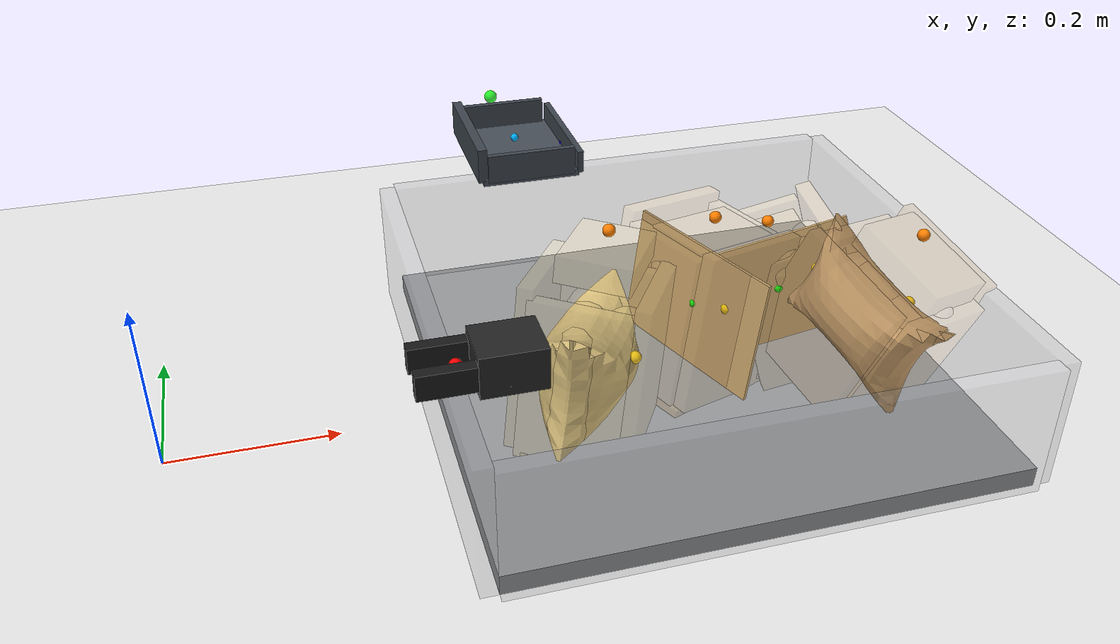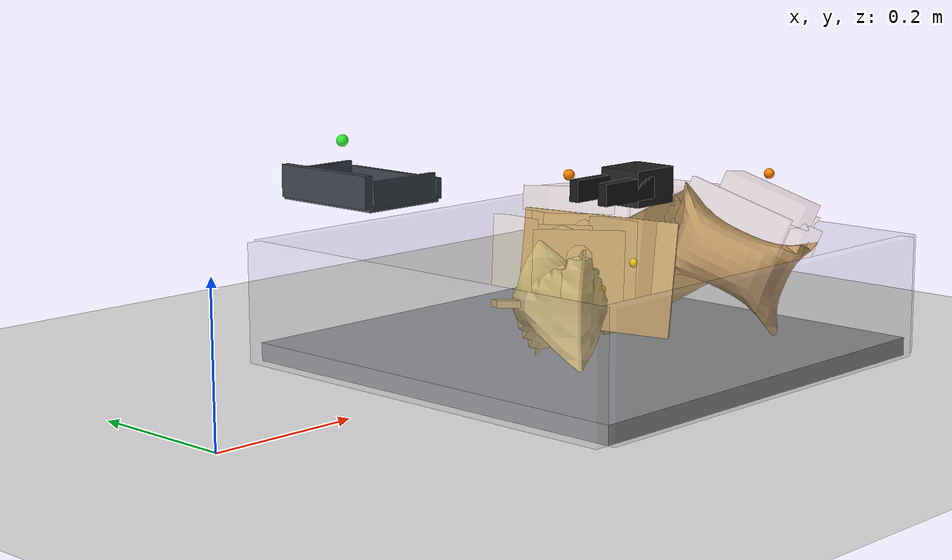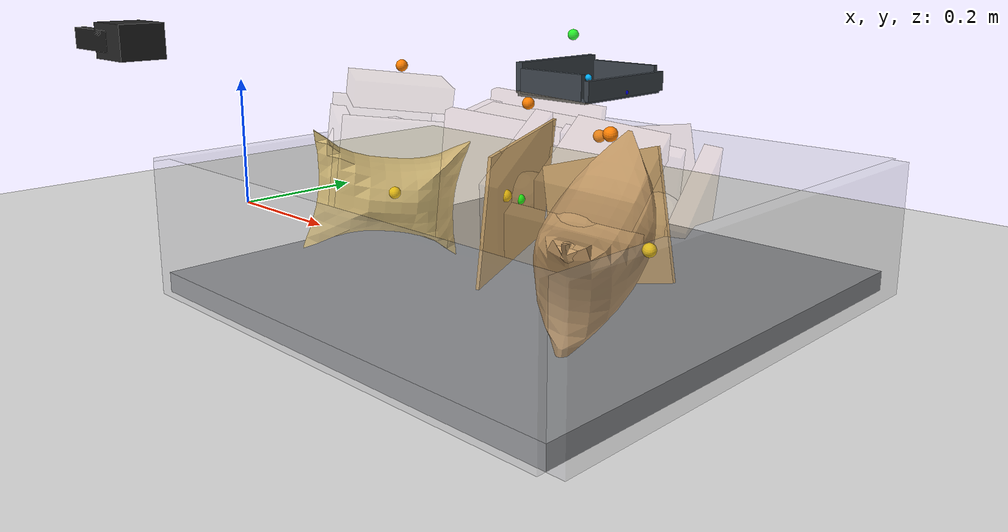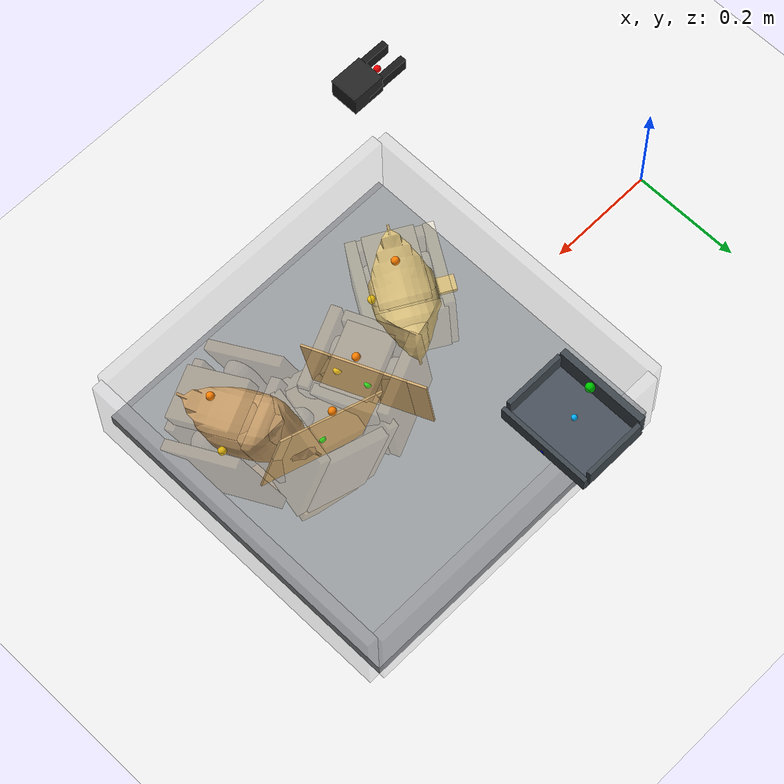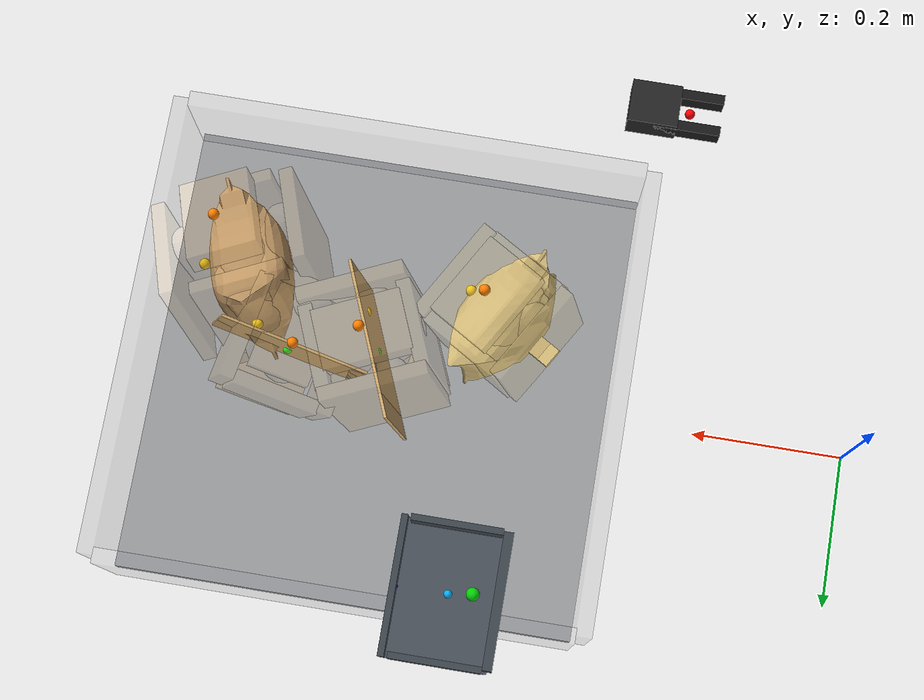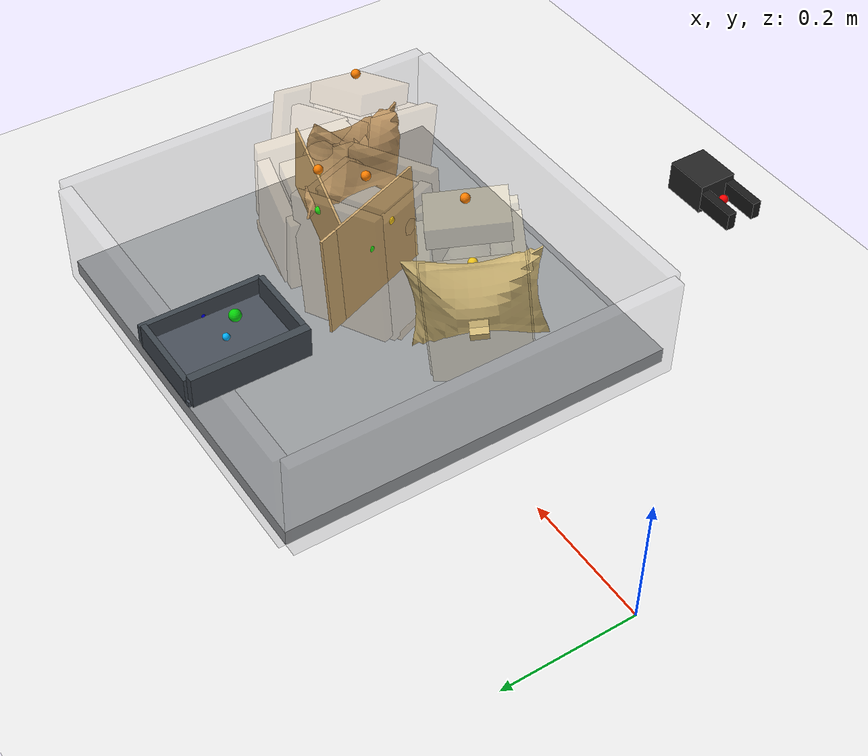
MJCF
<mujoco model="low_fill_top_collapsed_top_exposed_ep0_try1">
  <compiler angle="radian" coordinate="local" inertiafromgeom="true" meshdir="D:/Michael/2025/01.Research/01.Parceldetection/16.Pybullet/bullet3-master (1)/bullet3-master/examples/pybullet/examples/DeformableTest/Sackcodex2/object"/>
  <option timestep="0.002" gravity="0 0 -9.81" integrator="implicitfast" iterations="100" tolerance="1e-8"/>
  <size memory="768M" nconmax="12000"/>

  <visual>
    <global azimuth="128" elevation="-20"/>
    <headlight ambient="0.34 0.34 0.34" diffuse="0.78 0.78 0.78" specular="0.15 0.15 0.15"/>
    <rgba haze="0.11 0.13 0.18 1"/>
  </visual>

  <default>
    <geom condim="4" friction="1.15 0.03 0.01" margin="0.003" solimp="0.93 0.98 0.003" solref="0.012 1"/>
    <joint damping="1.2" armature="0.002"/>
    <position kp="2500" forcelimited="true" forcerange="-420 420"/>
    <motor ctrllimited="true"/>
  </default>

  <asset>
    <mesh name="sack_0_visual_mesh" file="sack2.obj" scale="0.0718 0.0718 0.0751"/>
    <mesh name="sack_1_visual_mesh" file="sack2.obj" scale="0.0667 0.0667 0.0692"/>
    <mesh name="sack_2_visual_mesh" file="sack6Apply.obj" scale="0.0728 0.0728 0.0750"/>
    <mesh name="sack_3_visual_mesh" file="sack9.obj" scale="0.0692 0.0692 0.0762"/>
  </asset>

  <worldbody>
    <light name="key" pos="0.85 0.15 1.8" dir="-0.2 -0.1 -1" directional="true"/>
    <geom name="floor" type="plane" size="2 2 0.1" rgba="0.93 0.93 0.93 1"/>
    <geom name="work_pad" type="box" pos="0.62 0 0.012" size="0.30 0.30 0.012" rgba="0.60 0.61 0.62 1" friction="1.4 0.05 0.01"/>
    <geom name="corral_front" type="box" pos="0.93 0.00 0.08" size="0.010 0.30 0.08" rgba="0.55 0.55 0.58 0.22" friction="1.0 0.03 0.01"/>
    <geom name="corral_back" type="box" pos="0.31 0.00 0.08" size="0.010 0.30 0.08" rgba="0.55 0.55 0.58 0.18" friction="1.0 0.03 0.01"/>
    <geom name="corral_left" type="box" pos="0.62 0.30 0.08" size="0.30 0.010 0.08" rgba="0.55 0.55 0.58 0.14" friction="1.0 0.03 0.01"/>
    <geom name="corral_right" type="box" pos="0.62 -0.30 0.08" size="0.30 0.010 0.08" rgba="0.55 0.55 0.58 0.14" friction="1.0 0.03 0.01"/>
    <camera name="overview" pos="1.22 0.00 0.92" xyaxes="0 1 0 -0.46 0 0.88"/>

    <body name="gripper_mocap" mocap="true" pos="0.36 -0.33 0.30" quat="0.707107 0 -0.707107 0"/>
    <body name="scoop_mocap" mocap="true" pos="0.42 0.28 0.20" quat="1 0 0 0"/>

    <body name="gripper_ctrl_base" pos="0.36 -0.33 0.30">
      <inertial pos="0 0 0" mass="0.001" diaginertia="1e-6 1e-6 1e-6"/>
      <joint name="gripper_ctrl_x" type="slide" axis="1 0 0" limited="true" range="0.20 1.00"/>
      <body name="gripper_ctrl_y_body">
        <inertial pos="0 0 0" mass="0.001" diaginertia="1e-6 1e-6 1e-6"/>
        <joint name="gripper_ctrl_y" type="slide" axis="0 1 0" limited="true" range="-0.60 0.60"/>
        <body name="gripper_ctrl_z_body">
          <inertial pos="0 0 0" mass="0.001" diaginertia="1e-6 1e-6 1e-6"/>
          <joint name="gripper_ctrl_z" type="slide" axis="0 0 1" limited="true" range="0.04 0.70"/>
          <body name="gripper_ctrl_yaw_body">
            <inertial pos="0 0 0" mass="0.001" diaginertia="1e-6 1e-6 1e-6"/>
            <joint name="gripper_ctrl_yaw" type="hinge" axis="0 0 1" limited="true" range="-3.1416 3.1416"/>
            <body name="gripper_ctrl_pitch_body">
              <inertial pos="0 0 0" mass="0.001" diaginertia="1e-6 1e-6 1e-6"/>
              <joint name="gripper_ctrl_pitch" type="hinge" axis="0 1 0" limited="true" range="-3.1416 3.1416"/>
              <body name="gripper_ctrl_roll_body">
                <inertial pos="0 0 0" mass="0.001" diaginertia="1e-6 1e-6 1e-6"/>
                <joint name="gripper_ctrl_roll" type="hinge" axis="1 0 0" limited="true" range="-3.1416 3.1416"/>
              </body>
            </body>
          </body>
        </body>
      </body>
    </body>

    <body name="scoop_ctrl_base" pos="0.42 0.28 0.20">
      <inertial pos="0 0 0" mass="0.001" diaginertia="1e-6 1e-6 1e-6"/>
      <joint name="scoop_ctrl_x" type="slide" axis="1 0 0" limited="true" range="0.20 1.00"/>
      <body name="scoop_ctrl_y_body">
        <inertial pos="0 0 0" mass="0.001" diaginertia="1e-6 1e-6 1e-6"/>
        <joint name="scoop_ctrl_y" type="slide" axis="0 1 0" limited="true" range="-0.60 0.60"/>
        <body name="scoop_ctrl_z_body">
          <inertial pos="0 0 0" mass="0.001" diaginertia="1e-6 1e-6 1e-6"/>
          <joint name="scoop_ctrl_z" type="slide" axis="0 0 1" limited="true" range="0.04 0.70"/>
          <body name="scoop_ctrl_yaw_body">
            <inertial pos="0 0 0" mass="0.001" diaginertia="1e-6 1e-6 1e-6"/>
            <joint name="scoop_ctrl_yaw" type="hinge" axis="0 0 1" limited="true" range="-3.1416 3.1416"/>
            <body name="scoop_ctrl_pitch_body">
              <inertial pos="0 0 0" mass="0.001" diaginertia="1e-6 1e-6 1e-6"/>
              <joint name="scoop_ctrl_pitch" type="hinge" axis="0 1 0" limited="true" range="-3.1416 3.1416"/>
              <body name="scoop_ctrl_roll_body">
                <inertial pos="0 0 0" mass="0.001" diaginertia="1e-6 1e-6 1e-6"/>
                <joint name="scoop_ctrl_roll" type="hinge" axis="1 0 0" limited="true" range="-3.1416 3.1416"/>
              </body>
            </body>
          </body>
        </body>
      </body>
    </body>

    <body name="gripper_tool" pos="0.36 -0.33 0.30" quat="0.707107 0 -0.707107 0">
      <freejoint name="gripper_tool_free"/>
      <inertial pos="0 0 0.04" mass="0.08" diaginertia="0.0002 0.0002 0.0002"/>
      <geom name="gripper_palm" type="box" pos="0 0 0.030" size="0.020 0.026 0.030" rgba="0.14 0.14 0.14 1"/>
      <body name="left_finger_body" pos="0 0 0.072">
        <joint name="left_finger_slide" type="slide" axis="0 1 0" limited="true" range="0.010 0.040" damping="12"/>
        <geom name="left_finger_geom" type="box" pos="0 0.020 0" size="0.012 0.006 0.040" rgba="0.10 0.10 0.10 1" friction="2.2 0.05 0.01"/>
      </body>
      <body name="right_finger_body" pos="0 0 0.072">
        <joint name="right_finger_slide" type="slide" axis="0 -1 0" limited="true" range="0.010 0.040" damping="12"/>
        <geom name="right_finger_geom" type="box" pos="0 -0.020 0" size="0.012 0.006 0.040" rgba="0.10 0.10 0.10 1" friction="2.2 0.05 0.01"/>
      </body>
      <site name="gripper_pinch_site" pos="0 0 0.074" size="0.006" rgba="1 0 0 1"/>
    </body>

    <body name="scoop_tool" pos="0.42 0.28 0.20" quat="1 0 0 0">
      <freejoint name="scoop_tool_free"/>
      <inertial pos="0 0 0.02" mass="0.10" diaginertia="0.0003 0.0003 0.0003"/>
      <geom name="scoop_plate" type="box" pos="0.062 0 0" size="0.062 0.085 0.004" rgba="0.28 0.31 0.35 1" friction="1.7 0.05 0.01"/>
      <geom name="scoop_lip" type="box" pos="0.126 0 0.014" size="0.004 0.085 0.014" rgba="0.24 0.27 0.30 1" friction="1.7 0.05 0.01"/>
      <geom name="scoop_left_rail" type="box" pos="0.062 0.082 0.018" size="0.056 0.004 0.018" rgba="0.24 0.27 0.30 1"/>
      <geom name="scoop_right_rail" type="box" pos="0.062 -0.082 0.018" size="0.056 0.004 0.018" rgba="0.24 0.27 0.30 1"/>
      <geom name="scoop_backstop" type="box" pos="0.000 0 0.022" size="0.006 0.082 0.022" rgba="0.24 0.27 0.30 1"/>
      <site name="scoop_tip_site" pos="0.126 0 0.005" size="0.005" rgba="0 0 1 1"/>
      <site name="scoop_center_site" pos="0.060 0 0.020" size="0.005" rgba="0 0.7 1 1"/>
      <site name="score_overlay_site" pos="0.030 0 0.080" size="0.008" rgba="0 1 0 0.8"/>
    </body>

    <body name="sack_0" pos="0.6248 -0.0169 0.1169" euler="-0.0039 0.1259 -2.7451">
      <freejoint name="sack_0_free"/>

      <geom name="sack_0_visual" type="mesh" mesh="sack_0_visual_mesh" rgba="0.820 0.670 0.440 0.92" contype="0" conaffinity="0"/>
      <site name="sack_0_center_site" pos="0 0 0.000" size="0.006" rgba="0 1 0 1"/>
      <site name="sack_0_top_site" pos="0 0.0060 0.1150" size="0.007" rgba="1 0.5 0 1"/>
      <site name="sack_0_side_site" pos="0.0000 0.0494 0.018" size="0.007" rgba="1 0.8 0 1"/>

      <geom name="sack_0_core_geom" type="ellipsoid" pos="0 0 0.0057" size="0.0455 0.0357 0.0679" mass="0.6456" rgba="0.820 0.670 0.440 0.12" friction="1.0 0.03 0.01"/>
      <geom name="sack_0_core_front" type="capsule" fromto="-0.0200 0 -0.0200 0.0450 0 0.0600" size="0.0302" mass="0.1537" rgba="0.820 0.670 0.440 0.10"/>
      <geom name="sack_0_core_left" type="capsule" fromto="-0.008 0.0281 -0.010 0.018 0.0461 0.060" size="0.0241" mass="0.2767" rgba="0.820 0.670 0.440 0.10"/>
      <geom name="sack_0_core_right" type="capsule" fromto="-0.006 -0.0281 -0.008 0.020 -0.0481 0.054" size="0.0221" mass="0.2767" rgba="0.820 0.670 0.440 0.10"/>

      <body name="sack_0_bottom_support_proxy_body" pos="0 0.0128 -0.1005">
        <joint name="sack_0_bottom_x" type="slide" axis="1 0 0" limited="true" range="-0.012 0.012" damping="18" stiffness="465.1"/>
        <joint name="sack_0_bottom_y" type="slide" axis="0 1 0" limited="true" range="-0.012 0.012" damping="18" stiffness="465.1"/>
        <joint name="sack_0_bottom_z" type="slide" axis="0 0 1" limited="true" range="-0.008 0.020" damping="24" stiffness="572.9"/>
        <geom name="sack_0_bottom_support_proxy" type="box" size="0.0731 0.0554 0.0100" mass="0.1230" rgba="0.820 0.670 0.440 0.34" friction="1.55 0.05 0.01"/>
      </body>

      <body name="sack_0_top_grasp_proxy_body" pos="0.0000 0.0060 0.0850">
        <joint name="sack_0_top_x" type="slide" axis="1 0 0" limited="true" range="-0.018 0.018" damping="12" stiffness="178.6"/>
        <joint name="sack_0_top_y" type="slide" axis="0 1 0" limited="true" range="-0.018 0.018" damping="12" stiffness="178.6"/>
        <joint name="sack_0_top_z" type="slide" axis="0 0 1" limited="true" range="-0.040 0.010" damping="14" stiffness="131.7"/>
        <geom name="sack_0_top_grasp_proxy" type="box" size="0.0571 0.0394 0.0150" mass="0.0922" rgba="0.820 0.670 0.440 0.26" friction="2.2 0.05 0.01"/>
      </body>

      <body name="sack_0_left_side_proxy_body" pos="0 0.0674 0.010">
        <joint name="sack_0_left_side_slide" type="slide" axis="0 -1 0" limited="true" range="-0.028 0.016" damping="16" stiffness="232.3"/>
        <geom name="sack_0_left_side_proxy" type="box" size="0.0691 0.0090 0.0985" mass="0.0922" rgba="0.820 0.670 0.440 0.24"/>
      </body>

      <body name="sack_0_right_side_proxy_body" pos="0 -0.0634 0.010">
        <joint name="sack_0_right_side_slide" type="slide" axis="0 1 0" limited="true" range="-0.028 0.016" damping="16" stiffness="215.4"/>
        <geom name="sack_0_right_side_proxy" type="box" size="0.0691 0.0090 0.0985" mass="0.0922" rgba="0.820 0.670 0.440 0.24"/>
      </body>

      <body name="sack_0_front_proxy_body" pos="0.0631 0 0.000">
        <joint name="sack_0_front_slide" type="slide" axis="-1 0 0" limited="true" range="-0.022 0.012" damping="15" stiffness="222.5"/>
        <geom name="sack_0_front_support_proxy" type="box" size="0.0090 0.0554 0.0965" mass="0.0769" rgba="0.820 0.670 0.440 0.22"/>
      </body>

      <body name="sack_0_back_proxy_body" pos="-0.0631 0 0.000">
        <joint name="sack_0_back_slide" type="slide" axis="1 0 0" limited="true" range="-0.022 0.012" damping="15" stiffness="205.6"/>
        <geom name="sack_0_back_support_proxy" type="box" size="0.0090 0.0554 0.0965" mass="0.0769" rgba="0.820 0.670 0.440 0.22"/>
      </body>

      <body name="sack_0_shape_proxy_body" pos="0.0000 0.0201 0.0383">
        <joint name="sack_0_bulge_y" type="slide" axis="0 1 0" limited="true" range="-0.020 0.020" damping="8" stiffness="96.6"/>
        <joint name="sack_0_bulge_z" type="slide" axis="0 0 1" limited="true" range="-0.014 0.028" damping="8" stiffness="97.5"/>
        <geom name="sack_0_shape_proxy" type="ellipsoid" size="0.0201 0.0162 0.0263" mass="0.0615" rgba="0.820 0.670 0.440 0.28"/>
      </body>
    </body>

    <body name="sack_1" pos="0.7388 -0.0031 0.1112" euler="-0.1143 -0.2602 -1.7670">
      <freejoint name="sack_1_free"/>

      <geom name="sack_1_visual" type="mesh" mesh="sack_1_visual_mesh" rgba="0.820 0.670 0.440 0.92" contype="0" conaffinity="0"/>
      <site name="sack_1_center_site" pos="0 0 0.000" size="0.006" rgba="0 1 0 1"/>
      <site name="sack_1_top_site" pos="0 0.0060 0.0909" size="0.007" rgba="1 0.5 0 1"/>
      <site name="sack_1_side_site" pos="0.0140 0.0488 0.018" size="0.007" rgba="1 0.8 0 1"/>

      <geom name="sack_1_core_geom" type="ellipsoid" pos="0 0 0.0056" size="0.0454 0.0354 0.0675" mass="0.6718" rgba="0.820 0.670 0.440 0.12" friction="1.0 0.03 0.01"/>
      <geom name="sack_1_core_front" type="capsule" fromto="-0.0060 0 -0.0200 0.0590 0 0.0600" size="0.0300" mass="0.1600" rgba="0.820 0.670 0.440 0.10"/>
      <geom name="sack_1_core_left" type="capsule" fromto="-0.008 0.0276 -0.010 0.018 0.0456 0.060" size="0.0241" mass="0.2879" rgba="0.820 0.670 0.440 0.10"/>
      <geom name="sack_1_core_right" type="capsule" fromto="-0.006 -0.0276 -0.008 0.020 -0.0476 0.054" size="0.0221" mass="0.2879" rgba="0.820 0.670 0.440 0.10"/>

      <body name="sack_1_bottom_support_proxy_body" pos="0 0.0068 -0.0845">
        <joint name="sack_1_bottom_x" type="slide" axis="1 0 0" limited="true" range="-0.012 0.012" damping="18" stiffness="458.8"/>
        <joint name="sack_1_bottom_y" type="slide" axis="0 1 0" limited="true" range="-0.012 0.012" damping="18" stiffness="458.8"/>
        <joint name="sack_1_bottom_z" type="slide" axis="0 0 1" limited="true" range="-0.008 0.020" damping="24" stiffness="565.2"/>
        <geom name="sack_1_bottom_support_proxy" type="box" size="0.0729 0.0548 0.0100" mass="0.1280" rgba="0.820 0.670 0.440 0.34" friction="1.55 0.05 0.01"/>
      </body>

      <body name="sack_1_top_grasp_proxy_body" pos="0.0140 0.0060 0.0609">
        <joint name="sack_1_top_x" type="slide" axis="1 0 0" limited="true" range="-0.018 0.018" damping="12" stiffness="176.2"/>
        <joint name="sack_1_top_y" type="slide" axis="0 1 0" limited="true" range="-0.018 0.018" damping="12" stiffness="176.2"/>
        <joint name="sack_1_top_z" type="slide" axis="0 0 1" limited="true" range="-0.040 0.010" damping="14" stiffness="129.6"/>
        <geom name="sack_1_top_grasp_proxy" type="box" size="0.0569 0.0388 0.0150" mass="0.0960" rgba="0.820 0.670 0.440 0.26" friction="2.2 0.05 0.01"/>
      </body>

      <body name="sack_1_left_side_proxy_body" pos="0 0.0664 0.010">
        <joint name="sack_1_left_side_slide" type="slide" axis="0 -1 0" limited="true" range="-0.028 0.016" damping="16" stiffness="227.7"/>
        <geom name="sack_1_left_side_proxy" type="box" size="0.0689 0.0090 0.0825" mass="0.0960" rgba="0.820 0.670 0.440 0.24"/>
      </body>

      <body name="sack_1_right_side_proxy_body" pos="0 -0.0624 0.010">
        <joint name="sack_1_right_side_slide" type="slide" axis="0 1 0" limited="true" range="-0.028 0.016" damping="16" stiffness="211.1"/>
        <geom name="sack_1_right_side_proxy" type="box" size="0.0689 0.0090 0.0825" mass="0.0960" rgba="0.820 0.670 0.440 0.24"/>
      </body>

      <body name="sack_1_front_proxy_body" pos="0.0769 0 0.000">
        <joint name="sack_1_front_slide" type="slide" axis="-1 0 0" limited="true" range="-0.022 0.012" damping="15" stiffness="219.4"/>
        <geom name="sack_1_front_support_proxy" type="box" size="0.0090 0.0548 0.0805" mass="0.0800" rgba="0.820 0.670 0.440 0.22"/>
      </body>

      <body name="sack_1_back_proxy_body" pos="-0.0629 0 0.000">
        <joint name="sack_1_back_slide" type="slide" axis="1 0 0" limited="true" range="-0.022 0.012" damping="15" stiffness="202.8"/>
        <geom name="sack_1_back_support_proxy" type="box" size="0.0090 0.0548 0.0805" mass="0.0800" rgba="0.820 0.670 0.440 0.22"/>
      </body>

      <body name="sack_1_shape_proxy_body" pos="0.0084 0.0196 0.0404">
        <joint name="sack_1_bulge_y" type="slide" axis="0 1 0" limited="true" range="-0.020 0.020" damping="8" stiffness="100.8"/>
        <joint name="sack_1_bulge_z" type="slide" axis="0 0 1" limited="true" range="-0.014 0.028" damping="8" stiffness="100.6"/>
        <geom name="sack_1_shape_proxy" type="ellipsoid" size="0.0201 0.0162 0.0264" mass="0.0640" rgba="0.820 0.670 0.440 0.28"/>
      </body>
    </body>

    <body name="sack_2" pos="0.8041 -0.0980 0.1191" euler="0.2915 0.2638 -1.2355">
      <freejoint name="sack_2_free"/>

      <geom name="sack_2_visual" type="mesh" mesh="sack_2_visual_mesh" rgba="0.760 0.600 0.400 0.92" contype="0" conaffinity="0"/>
      <site name="sack_2_center_site" pos="0 0 0.000" size="0.006" rgba="0 1 0 1"/>
      <site name="sack_2_top_site" pos="0 0.0060 0.1259" size="0.007" rgba="1 0.5 0 1"/>
      <site name="sack_2_side_site" pos="0.0140 0.0550 0.018" size="0.007" rgba="1 0.8 0 1"/>

      <geom name="sack_2_core_geom" type="ellipsoid" pos="0 0 0.0058" size="0.0441 0.0341 0.0770" mass="0.8639" rgba="0.760 0.600 0.400 0.12" friction="1.0 0.03 0.01"/>
      <geom name="sack_2_core_front" type="capsule" fromto="-0.0060 0 -0.0200 0.0590 0 0.0600" size="0.0297" mass="0.2057" rgba="0.760 0.600 0.400 0.10"/>
      <geom name="sack_2_core_left" type="capsule" fromto="-0.008 0.0422 -0.010 0.018 0.0602 0.060" size="0.0242" mass="0.3703" rgba="0.760 0.600 0.400 0.10"/>
      <geom name="sack_2_core_right" type="capsule" fromto="-0.006 -0.0422 -0.008 0.020 -0.0622 0.054" size="0.0223" mass="0.3703" rgba="0.760 0.600 0.400 0.10"/>

      <body name="sack_2_bottom_support_proxy_body" pos="0 0.0088 -0.0829">
        <joint name="sack_2_bottom_x" type="slide" axis="1 0 0" limited="true" range="-0.012 0.012" damping="18" stiffness="449.7"/>
        <joint name="sack_2_bottom_y" type="slide" axis="0 1 0" limited="true" range="-0.012 0.012" damping="18" stiffness="449.7"/>
        <joint name="sack_2_bottom_z" type="slide" axis="0 0 1" limited="true" range="-0.008 0.020" damping="24" stiffness="554.1"/>
        <geom name="sack_2_bottom_support_proxy" type="box" size="0.0746 0.0610 0.0100" mass="0.1646" rgba="0.760 0.600 0.400 0.34" friction="1.55 0.05 0.01"/>
      </body>

      <body name="sack_2_top_grasp_proxy_body" pos="0.0140 0.0060 0.0959">
        <joint name="sack_2_top_x" type="slide" axis="1 0 0" limited="true" range="-0.018 0.018" damping="12" stiffness="172.7"/>
        <joint name="sack_2_top_y" type="slide" axis="0 1 0" limited="true" range="-0.018 0.018" damping="12" stiffness="172.7"/>
        <joint name="sack_2_top_z" type="slide" axis="0 0 1" limited="true" range="-0.040 0.010" damping="14" stiffness="126.6"/>
        <geom name="sack_2_top_grasp_proxy" type="box" size="0.0586 0.0450 0.0150" mass="0.1234" rgba="0.760 0.600 0.400 0.26" friction="2.2 0.05 0.01"/>
      </body>

      <body name="sack_2_left_side_proxy_body" pos="0 0.0873 0.010">
        <joint name="sack_2_left_side_slide" type="slide" axis="0 -1 0" limited="true" range="-0.028 0.016" damping="16" stiffness="222.6"/>
        <geom name="sack_2_left_side_proxy" type="box" size="0.0706 0.0090 0.0809" mass="0.1234" rgba="0.760 0.600 0.400 0.24"/>
      </body>

      <body name="sack_2_right_side_proxy_body" pos="0 -0.0833 0.010">
        <joint name="sack_2_right_side_slide" type="slide" axis="0 1 0" limited="true" range="-0.028 0.016" damping="16" stiffness="206.5"/>
        <geom name="sack_2_right_side_proxy" type="box" size="0.0706 0.0090 0.0809" mass="0.1234" rgba="0.760 0.600 0.400 0.24"/>
      </body>

      <body name="sack_2_front_proxy_body" pos="0.0786 0 0.000">
        <joint name="sack_2_front_slide" type="slide" axis="-1 0 0" limited="true" range="-0.022 0.012" damping="15" stiffness="214.9"/>
        <geom name="sack_2_front_support_proxy" type="box" size="0.0090 0.0610 0.0789" mass="0.1028" rgba="0.760 0.600 0.400 0.22"/>
      </body>

      <body name="sack_2_back_proxy_body" pos="-0.0646 0 0.000">
        <joint name="sack_2_back_slide" type="slide" axis="1 0 0" limited="true" range="-0.022 0.012" damping="15" stiffness="198.8"/>
        <geom name="sack_2_back_support_proxy" type="box" size="0.0090 0.0610 0.0789" mass="0.1028" rgba="0.760 0.600 0.400 0.22"/>
      </body>

      <body name="sack_2_shape_proxy_body" pos="0.0084 0.0342 0.0434">
        <joint name="sack_2_bulge_y" type="slide" axis="0 1 0" limited="true" range="-0.020 0.020" damping="8" stiffness="106.8"/>
        <joint name="sack_2_bulge_z" type="slide" axis="0 0 1" limited="true" range="-0.014 0.028" damping="8" stiffness="105.1"/>
        <geom name="sack_2_shape_proxy" type="ellipsoid" size="0.0202 0.0164 0.0261" mass="0.0823" rgba="0.760 0.600 0.400 0.28"/>
      </body>
    </body>

    <body name="sack_3" pos="0.4720 -0.0894 0.1089" euler="-0.0659 0.1184 -2.1130">
      <freejoint name="sack_3_free"/>

      <geom name="sack_3_visual" type="mesh" mesh="sack_3_visual_mesh" rgba="0.840 0.740 0.480 0.92" contype="0" conaffinity="0"/>
      <site name="sack_3_center_site" pos="0 0 0.000" size="0.006" rgba="0 1 0 1"/>
      <site name="sack_3_top_site" pos="0 0.0060 0.1593" size="0.007" rgba="1 0.5 0 1"/>
      <site name="sack_3_side_site" pos="0.0000 0.0516 0.018" size="0.007" rgba="1 0.8 0 1"/>

      <geom name="sack_3_core_geom" type="ellipsoid" pos="0 0 0.0060" size="0.0510 0.0433 0.0913" mass="1.0926" rgba="0.840 0.740 0.480 0.12" friction="1.0 0.03 0.01"/>
      <geom name="sack_3_core_front" type="capsule" fromto="-0.0200 0 -0.0200 0.0450 0 0.0600" size="0.0321" mass="0.2601" rgba="0.840 0.740 0.480 0.10"/>
      <geom name="sack_3_core_left" type="capsule" fromto="-0.008 0.0231 -0.010 0.018 0.0411 0.060" size="0.0240" mass="0.4682" rgba="0.840 0.740 0.480 0.10"/>
      <geom name="sack_3_core_right" type="capsule" fromto="-0.006 -0.0231 -0.008 0.020 -0.0431 0.054" size="0.0220" mass="0.4682" rgba="0.840 0.740 0.480 0.10"/>

      <body name="sack_3_bottom_support_proxy_body" pos="0 0.0087 -0.0987">
        <joint name="sack_3_bottom_x" type="slide" axis="1 0 0" limited="true" range="-0.012 0.012" damping="18" stiffness="521.5"/>
        <joint name="sack_3_bottom_y" type="slide" axis="0 1 0" limited="true" range="-0.012 0.012" damping="18" stiffness="521.5"/>
        <joint name="sack_3_bottom_z" type="slide" axis="0 0 1" limited="true" range="-0.008 0.020" damping="24" stiffness="641.9"/>
        <geom name="sack_3_bottom_support_proxy" type="box" size="0.0728 0.0576 0.0100" mass="0.2081" rgba="0.840 0.740 0.480 0.34" friction="1.55 0.05 0.01"/>
      </body>

      <body name="sack_3_top_grasp_proxy_body" pos="0.0000 0.0060 0.1293">
        <joint name="sack_3_top_x" type="slide" axis="1 0 0" limited="true" range="-0.018 0.018" damping="12" stiffness="200.6"/>
        <joint name="sack_3_top_y" type="slide" axis="0 1 0" limited="true" range="-0.018 0.018" damping="12" stiffness="200.6"/>
        <joint name="sack_3_top_z" type="slide" axis="0 0 1" limited="true" range="-0.040 0.010" damping="14" stiffness="150.5"/>
        <geom name="sack_3_top_grasp_proxy" type="box" size="0.0568 0.0416 0.0150" mass="0.1561" rgba="0.840 0.740 0.480 0.26" friction="2.2 0.05 0.01"/>
      </body>

      <body name="sack_3_left_side_proxy_body" pos="0 0.0647 0.010">
        <joint name="sack_3_left_side_slide" type="slide" axis="0 -1 0" limited="true" range="-0.028 0.016" damping="16" stiffness="270.9"/>
        <geom name="sack_3_left_side_proxy" type="box" size="0.0688 0.0090 0.0967" mass="0.1561" rgba="0.840 0.740 0.480 0.24"/>
      </body>

      <body name="sack_3_right_side_proxy_body" pos="0 -0.0607 0.010">
        <joint name="sack_3_right_side_slide" type="slide" axis="0 1 0" limited="true" range="-0.028 0.016" damping="16" stiffness="250.8"/>
        <geom name="sack_3_right_side_proxy" type="box" size="0.0688 0.0090 0.0967" mass="0.1561" rgba="0.840 0.740 0.480 0.24"/>
      </body>

      <body name="sack_3_front_proxy_body" pos="0.0628 0 0.000">
        <joint name="sack_3_front_slide" type="slide" axis="-1 0 0" limited="true" range="-0.022 0.012" damping="15" stiffness="250.8"/>
        <geom name="sack_3_front_support_proxy" type="box" size="0.0090 0.0576 0.0947" mass="0.1301" rgba="0.840 0.740 0.480 0.22"/>
      </body>

      <body name="sack_3_back_proxy_body" pos="-0.0628 0 0.000">
        <joint name="sack_3_back_slide" type="slide" axis="1 0 0" limited="true" range="-0.022 0.012" damping="15" stiffness="230.7"/>
        <geom name="sack_3_back_support_proxy" type="box" size="0.0090 0.0576 0.0947" mass="0.1301" rgba="0.840 0.740 0.480 0.22"/>
      </body>

      <body name="sack_3_shape_proxy_body" pos="0.0000 0.0151 0.0195">
        <joint name="sack_3_bulge_y" type="slide" axis="0 1 0" limited="true" range="-0.020 0.020" damping="8" stiffness="60.0"/>
        <joint name="sack_3_bulge_z" type="slide" axis="0 0 1" limited="true" range="-0.014 0.028" damping="8" stiffness="70.0"/>
        <geom name="sack_3_shape_proxy" type="ellipsoid" size="0.0200 0.0161 0.0260" mass="0.1041" rgba="0.840 0.740 0.480 0.28"/>
      </body>
    </body>
  </worldbody>

  <equality>
    <weld name="gripper_follow" body1="gripper_mocap" body2="gripper_tool" torquescale="400" solref="0.002 1" solimp="0.99 0.999 0.0001"/>
    <weld name="scoop_follow" body1="scoop_mocap" body2="scoop_tool" torquescale="500" solref="0.002 1" solimp="0.99 0.999 0.0001"/>
  </equality>

  <actuator>
    <position name="gripper_ctrl_x_act" joint="gripper_ctrl_x" ctrlrange="0.20 1.00" kp="3500" forcerange="-300 300"/>
    <position name="gripper_ctrl_y_act" joint="gripper_ctrl_y" ctrlrange="-0.60 0.60" kp="3500" forcerange="-300 300"/>
    <position name="gripper_ctrl_z_act" joint="gripper_ctrl_z" ctrlrange="0.04 0.70" kp="3500" forcerange="-300 300"/>
    <position name="gripper_ctrl_yaw_act" joint="gripper_ctrl_yaw" ctrlrange="-3.1416 3.1416" kp="1800" forcerange="-250 250"/>
    <position name="gripper_ctrl_pitch_act" joint="gripper_ctrl_pitch" ctrlrange="-3.1416 3.1416" kp="1800" forcerange="-250 250"/>
    <position name="gripper_ctrl_roll_act" joint="gripper_ctrl_roll" ctrlrange="-3.1416 3.1416" kp="1800" forcerange="-250 250"/>
    <position name="scoop_ctrl_x_act" joint="scoop_ctrl_x" ctrlrange="0.20 1.00" kp="3500" forcerange="-300 300"/>
    <position name="scoop_ctrl_y_act" joint="scoop_ctrl_y" ctrlrange="-0.60 0.60" kp="3500" forcerange="-300 300"/>
    <position name="scoop_ctrl_z_act" joint="scoop_ctrl_z" ctrlrange="0.04 0.70" kp="3500" forcerange="-300 300"/>
    <position name="scoop_ctrl_yaw_act" joint="scoop_ctrl_yaw" ctrlrange="-3.1416 3.1416" kp="1800" forcerange="-250 250"/>
    <position name="scoop_ctrl_pitch_act" joint="scoop_ctrl_pitch" ctrlrange="-3.1416 3.1416" kp="1800" forcerange="-250 250"/>
    <position name="scoop_ctrl_roll_act" joint="scoop_ctrl_roll" ctrlrange="-3.1416 3.1416" kp="1800" forcerange="-250 250"/>
    <position name="left_finger_act" joint="left_finger_slide" ctrlrange="0.010 0.040" kp="2800" forcerange="-220 220"/>
    <position name="right_finger_act" joint="right_finger_slide" ctrlrange="0.010 0.040" kp="2800" forcerange="-220 220"/>
  </actuator>

  <contact>
    <exclude body1="sack_0_top_grasp_proxy_body" body2="sack_0_left_side_proxy_body"/>
    <exclude body1="sack_0_top_grasp_proxy_body" body2="sack_0_right_side_proxy_body"/>
    <exclude body1="sack_1_top_grasp_proxy_body" body2="sack_1_left_side_proxy_body"/>
    <exclude body1="sack_1_top_grasp_proxy_body" body2="sack_1_right_side_proxy_body"/>
    <exclude body1="sack_2_top_grasp_proxy_body" body2="sack_2_left_side_proxy_body"/>
    <exclude body1="sack_2_top_grasp_proxy_body" body2="sack_2_right_side_proxy_body"/>
    <exclude body1="sack_3_top_grasp_proxy_body" body2="sack_3_left_side_proxy_body"/>
    <exclude body1="sack_3_top_grasp_proxy_body" body2="sack_3_right_side_proxy_body"/>
  </contact>
</mujoco>
